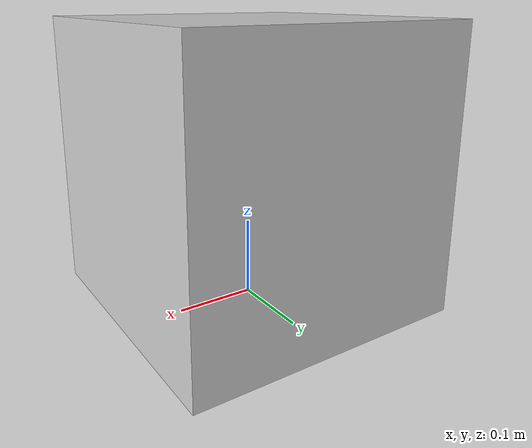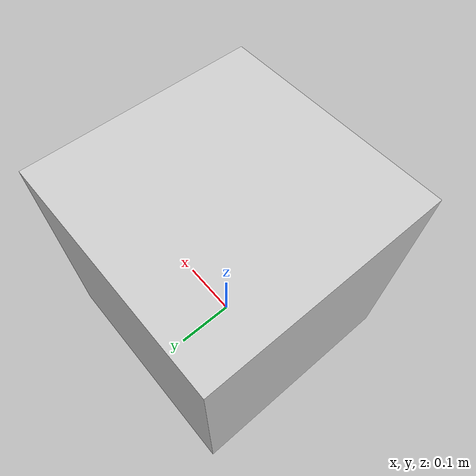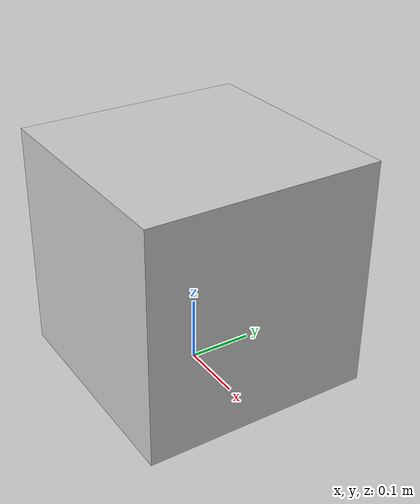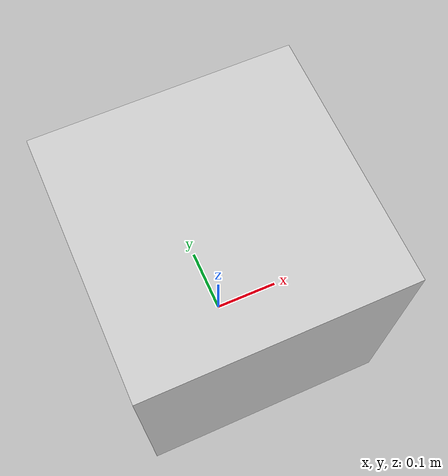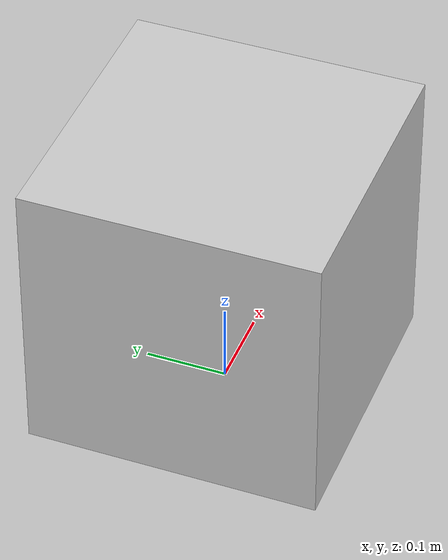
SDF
<?xml version="1.0" ?>
<sdf version="1.6">
  <model name="cubo">

    <static>true</static>
    <link name="link">

      <collision name="cubo">
      <pose>0 0 0 0 0 0</pose>
        <geometry>
          <mesh>
            <uri>model://cubo/meshes/cubo.dae</uri>
			      <scale>1 1 1</scale>
          </mesh>
        </geometry>
      </collision>

      <visual name="cubo">
        <pose>0 0 0 0 0 0</pose>
        <geometry>
          <mesh>
            <uri>model://cubo/meshes/cubo.dae</uri>
      			<scale>1 1 1</scale>
          </mesh>
        </geometry>
      </visual>

    </link>

  </model>
</sdf>
